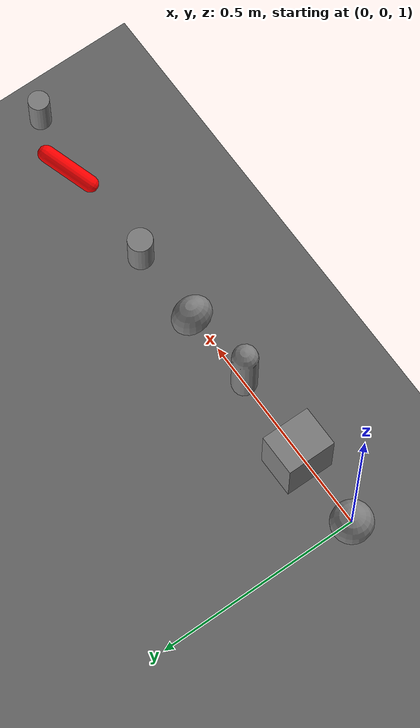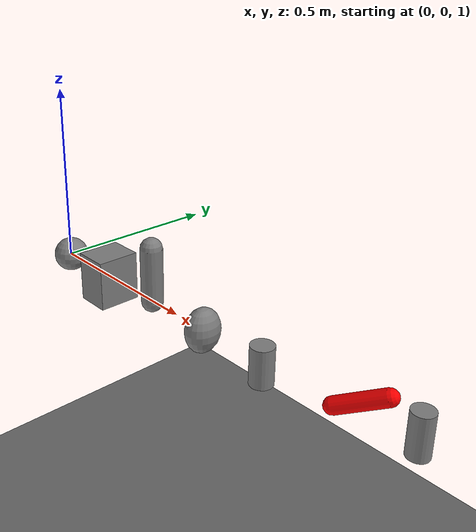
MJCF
<mujoco model="geoms_primitives">
  <!-- Covers: every primitive geom type - plane, sphere, capsule, ellipsoid,
       cylinder, box - plus a fromto-specified capsule and a fromto cylinder,
       with per-geom rgba/friction. -->
  <compiler angle="degree"/>
  <worldbody>
    <geom name="ground" type="plane" size="2 2 0.1" rgba="0.4 0.4 0.4 1"/>
    <body name="shapes" pos="0 0 1">
      <freejoint/>
      <geom name="g_sphere" type="sphere" size="0.05" pos="0 0 0"/>
      <geom name="g_box" type="box" size="0.05 0.06 0.07" pos="0.2 0 0"/>
      <geom name="g_capsule" type="capsule" size="0.03" fromto="0.4 0 0 0.4 0 0.15"/>
      <geom name="g_ellipsoid" type="ellipsoid" size="0.04 0.05 0.06" pos="0.6 0 0"/>
      <geom name="g_cylinder" type="cylinder" size="0.03 0.05" pos="0.8 0 0"/>
      <geom name="g_capsule_ft" type="capsule" size="0.02" fromto="1.0 0 0 1.1 0.05 0.05"
            friction="1 0.01 0.001" rgba="1 0 0 1"/>
      <geom name="g_cylinder_ft" type="cylinder" size="0.025" fromto="1.2 0 0 1.2 0 0.1"/>
    </body>
  </worldbody>
</mujoco>
